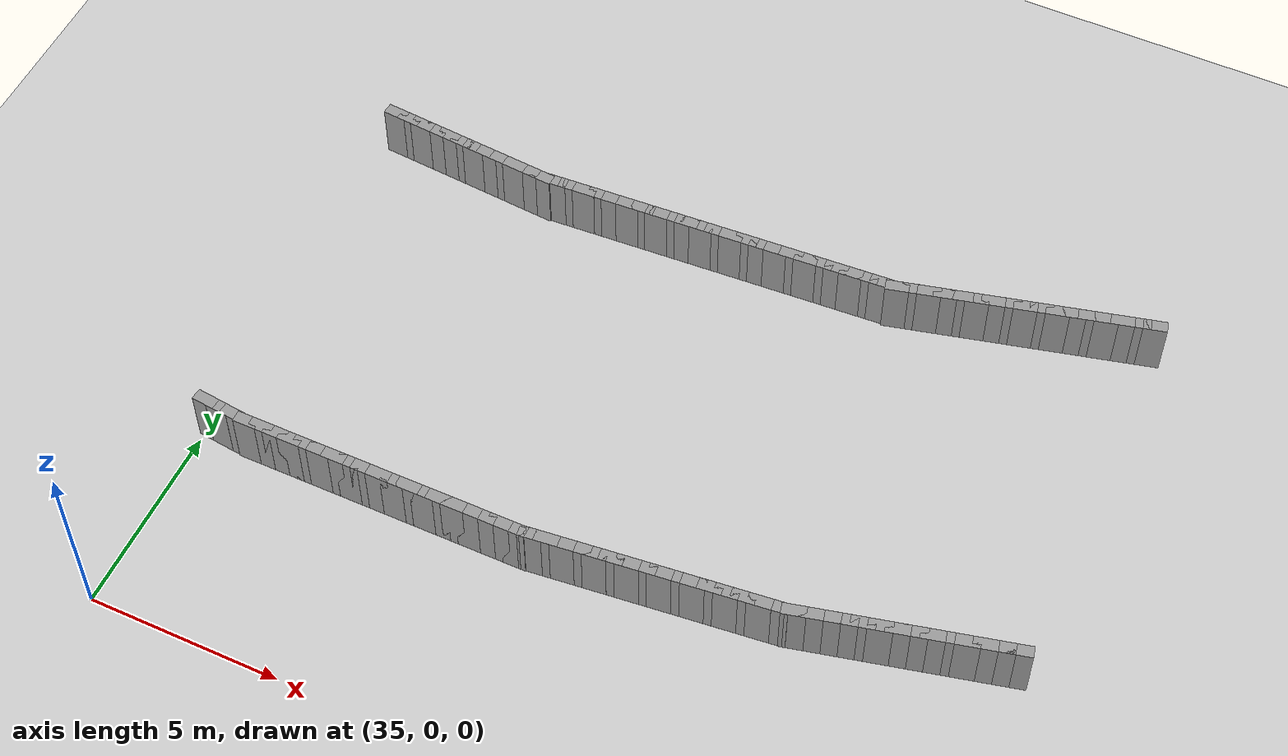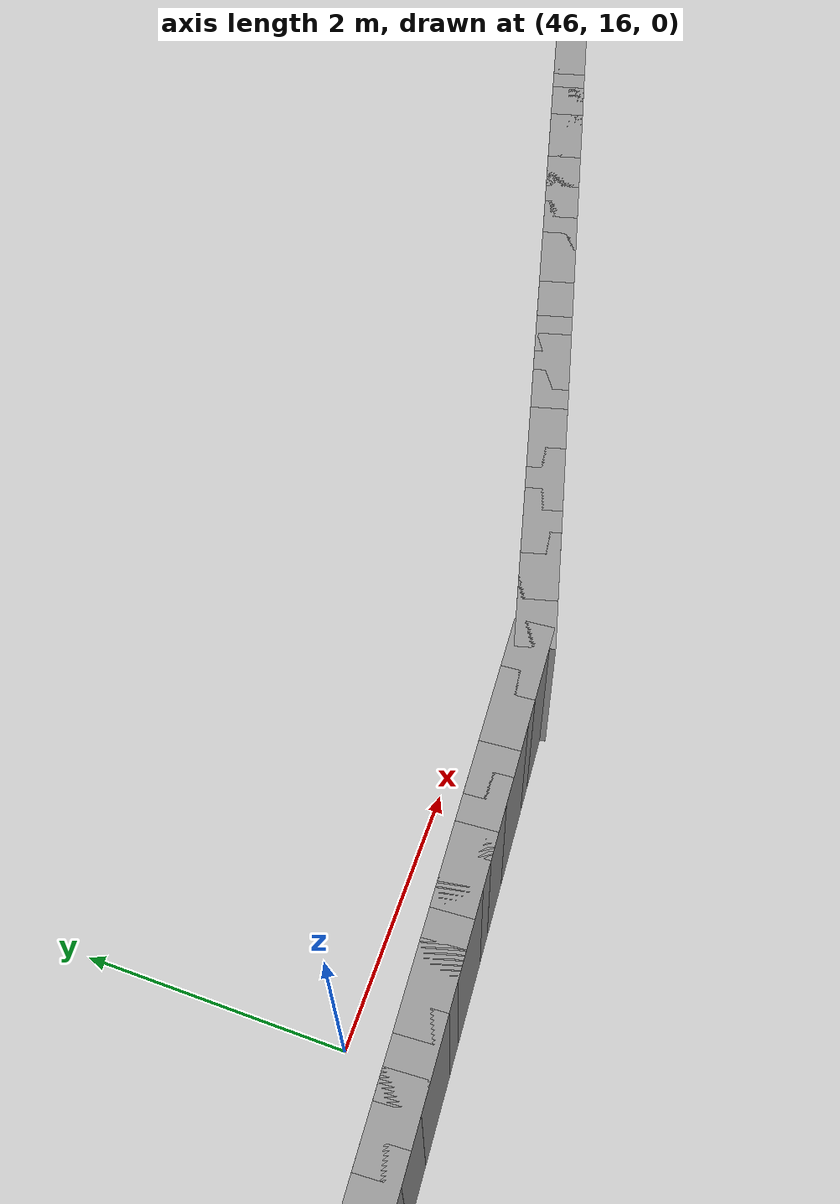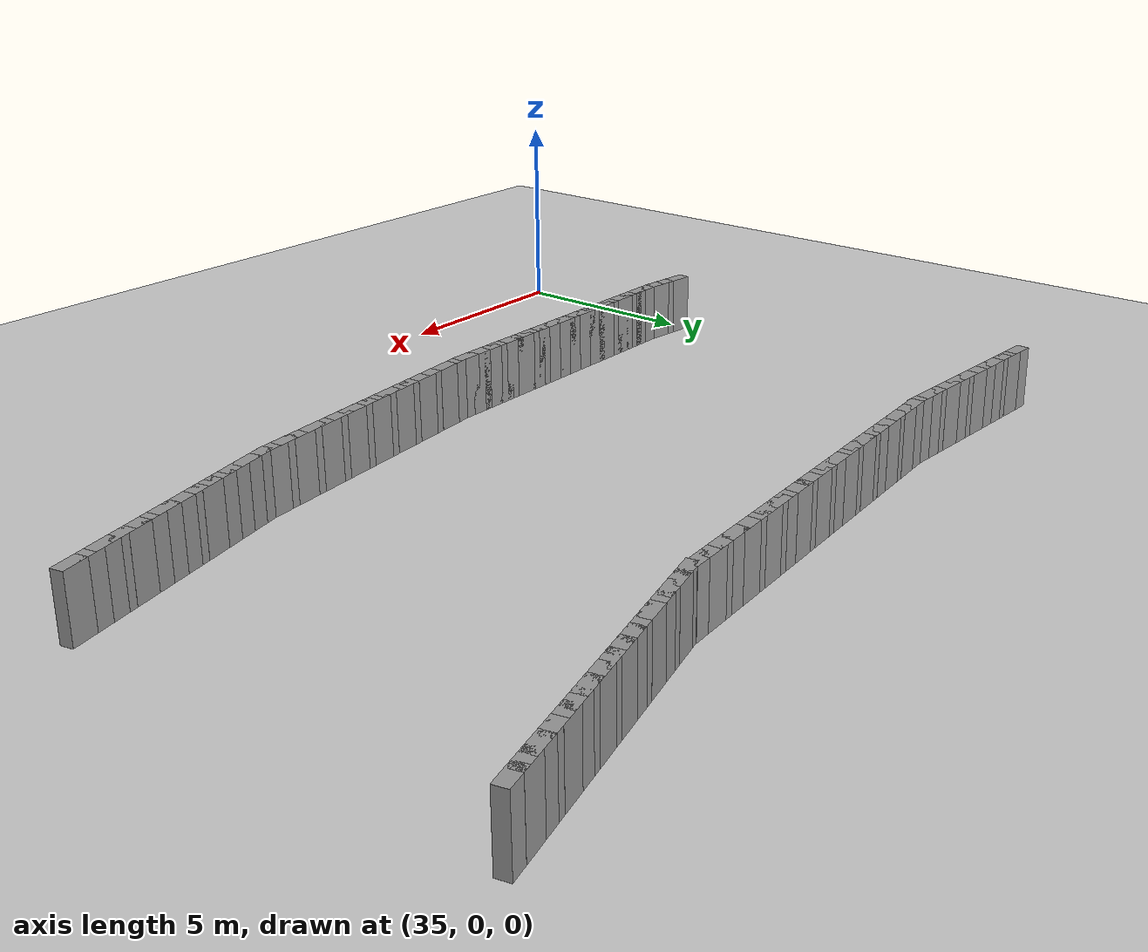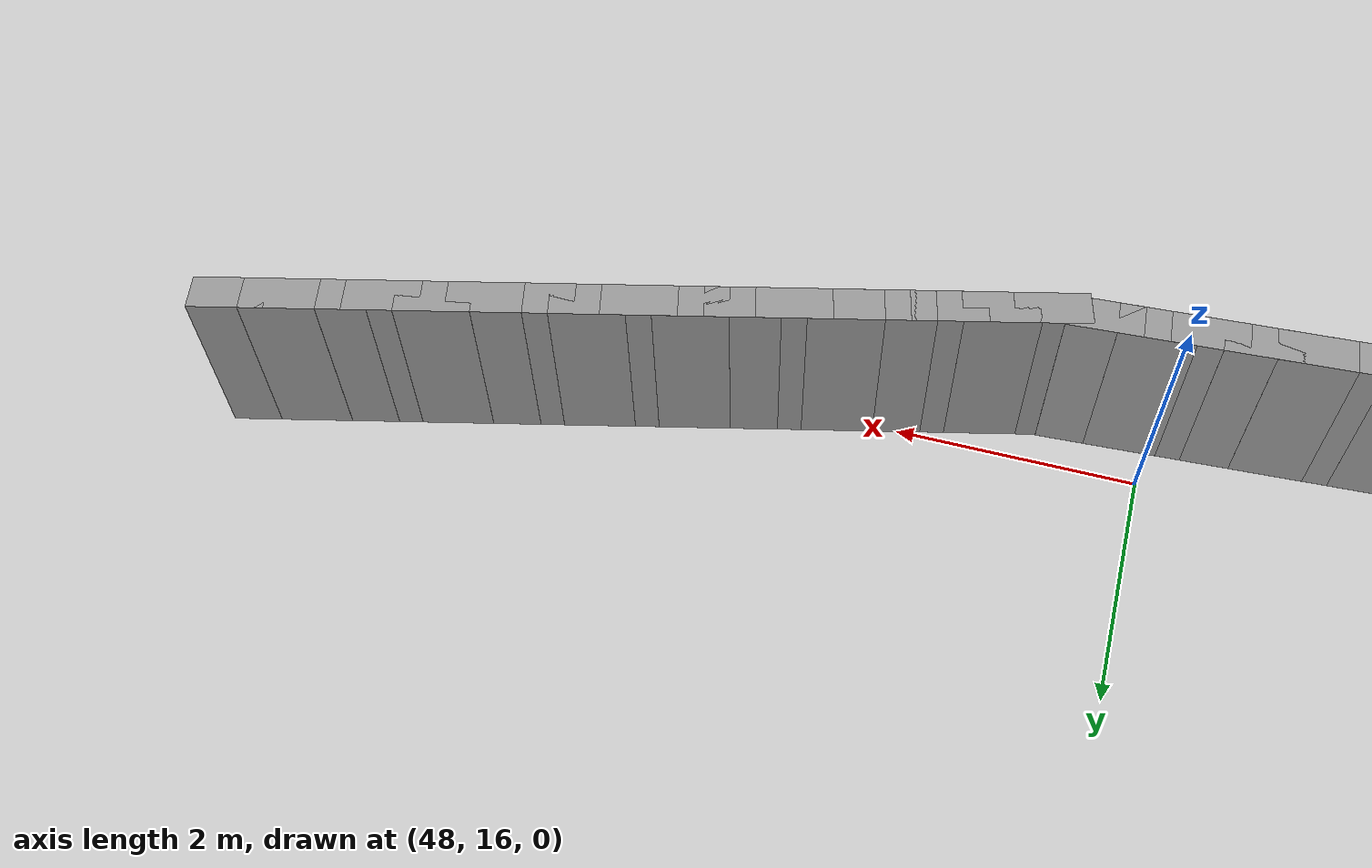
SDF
<sdf version="1.5">
 <world name="ellipse_loop">
  <include><uri>model://sun</uri></include>
  <include><uri>model://ground_plane</uri></include>
  <model name="curbL_104">
   <static>true</static>
   <pose>35.187 5.311 0.750 0 0 -0.109</pose>
   <link name="link">
    <collision name="col"><geometry><box><size>0.600 0.300 1.500</size></box></geometry></collision>
    <visual name="vis">
     <geometry><box><size>0.600 0.300 1.500</size></box></geometry>
     <material><ambient>0.6 0.6 0.6 1</ambient><diffuse>0.6 0.6 0.6 1</diffuse></material>
    </visual>
   </link>
  </model>
  <model name="curbL_105">
   <static>true</static>
   <pose>35.585 5.267 0.750 0 0 -0.109</pose>
   <link name="link">
    <collision name="col"><geometry><box><size>0.600 0.300 1.500</size></box></geometry></collision>
    <visual name="vis">
     <geometry><box><size>0.600 0.300 1.500</size></box></geometry>
     <material><ambient>0.6 0.6 0.6 1</ambient><diffuse>0.6 0.6 0.6 1</diffuse></material>
    </visual>
   </link>
  </model>
  <model name="curbL_106">
   <static>true</static>
   <pose>35.983 5.224 0.750 0 0 -0.109</pose>
   <link name="link">
    <collision name="col"><geometry><box><size>0.600 0.300 1.500</size></box></geometry></collision>
    <visual name="vis">
     <geometry><box><size>0.600 0.300 1.500</size></box></geometry>
     <material><ambient>0.6 0.6 0.6 1</ambient><diffuse>0.6 0.6 0.6 1</diffuse></material>
    </visual>
   </link>
  </model>
  <model name="curbL_107">
   <static>true</static>
   <pose>36.381 5.191 0.750 0 0 0.000</pose>
   <link name="link">
    <collision name="col"><geometry><box><size>0.600 0.300 1.500</size></box></geometry></collision>
    <visual name="vis">
     <geometry><box><size>0.600 0.300 1.500</size></box></geometry>
     <material><ambient>0.6 0.6 0.6 1</ambient><diffuse>0.6 0.6 0.6 1</diffuse></material>
    </visual>
   </link>
  </model>
  <model name="curbL_108">
   <static>true</static>
   <pose>36.781 5.191 0.750 0 0 0.000</pose>
   <link name="link">
    <collision name="col"><geometry><box><size>0.600 0.300 1.500</size></box></geometry></collision>
    <visual name="vis">
     <geometry><box><size>0.600 0.300 1.500</size></box></geometry>
     <material><ambient>0.6 0.6 0.6 1</ambient><diffuse>0.6 0.6 0.6 1</diffuse></material>
    </visual>
   </link>
  </model>
  <model name="curbL_109">
   <static>true</static>
   <pose>37.181 5.191 0.750 0 0 0.000</pose>
   <link name="link">
    <collision name="col"><geometry><box><size>0.600 0.300 1.500</size></box></geometry></collision>
    <visual name="vis">
     <geometry><box><size>0.600 0.300 1.500</size></box></geometry>
     <material><ambient>0.6 0.6 0.6 1</ambient><diffuse>0.6 0.6 0.6 1</diffuse></material>
    </visual>
   </link>
  </model>
  <model name="curbL_110">
   <static>true</static>
   <pose>37.581 5.191 0.750 0 0 0.000</pose>
   <link name="link">
    <collision name="col"><geometry><box><size>0.600 0.300 1.500</size></box></geometry></collision>
    <visual name="vis">
     <geometry><box><size>0.600 0.300 1.500</size></box></geometry>
     <material><ambient>0.6 0.6 0.6 1</ambient><diffuse>0.6 0.6 0.6 1</diffuse></material>
    </visual>
   </link>
  </model>
  <model name="curbL_111">
   <static>true</static>
   <pose>37.981 5.191 0.750 0 0 0.000</pose>
   <link name="link">
    <collision name="col"><geometry><box><size>0.600 0.300 1.500</size></box></geometry></collision>
    <visual name="vis">
     <geometry><box><size>0.600 0.300 1.500</size></box></geometry>
     <material><ambient>0.6 0.6 0.6 1</ambient><diffuse>0.6 0.6 0.6 1</diffuse></material>
    </visual>
   </link>
  </model>
  <model name="curbL_112">
   <static>true</static>
   <pose>38.381 5.191 0.750 0 0 0.000</pose>
   <link name="link">
    <collision name="col"><geometry><box><size>0.600 0.300 1.500</size></box></geometry></collision>
    <visual name="vis">
     <geometry><box><size>0.600 0.300 1.500</size></box></geometry>
     <material><ambient>0.6 0.6 0.6 1</ambient><diffuse>0.6 0.6 0.6 1</diffuse></material>
    </visual>
   </link>
  </model>
  <model name="curbL_113">
   <static>true</static>
   <pose>38.781 5.191 0.750 0 0 0.000</pose>
   <link name="link">
    <collision name="col"><geometry><box><size>0.600 0.300 1.500</size></box></geometry></collision>
    <visual name="vis">
     <geometry><box><size>0.600 0.300 1.500</size></box></geometry>
     <material><ambient>0.6 0.6 0.6 1</ambient><diffuse>0.6 0.6 0.6 1</diffuse></material>
    </visual>
   </link>
  </model>
  <model name="curbL_114">
   <static>true</static>
   <pose>39.181 5.191 0.750 0 0 0.000</pose>
   <link name="link">
    <collision name="col"><geometry><box><size>0.600 0.300 1.500</size></box></geometry></collision>
    <visual name="vis">
     <geometry><box><size>0.600 0.300 1.500</size></box></geometry>
     <material><ambient>0.6 0.6 0.6 1</ambient><diffuse>0.6 0.6 0.6 1</diffuse></material>
    </visual>
   </link>
  </model>
  <model name="curbL_115">
   <static>true</static>
   <pose>39.581 5.191 0.750 0 0 0.000</pose>
   <link name="link">
    <collision name="col"><geometry><box><size>0.600 0.300 1.500</size></box></geometry></collision>
    <visual name="vis">
     <geometry><box><size>0.600 0.300 1.500</size></box></geometry>
     <material><ambient>0.6 0.6 0.6 1</ambient><diffuse>0.6 0.6 0.6 1</diffuse></material>
    </visual>
   </link>
  </model>
  <model name="curbL_116">
   <static>true</static>
   <pose>39.981 5.191 0.750 0 0 0.000</pose>
   <link name="link">
    <collision name="col"><geometry><box><size>0.600 0.300 1.500</size></box></geometry></collision>
    <visual name="vis">
     <geometry><box><size>0.600 0.300 1.500</size></box></geometry>
     <material><ambient>0.6 0.6 0.6 1</ambient><diffuse>0.6 0.6 0.6 1</diffuse></material>
    </visual>
   </link>
  </model>
  <model name="curbL_117">
   <static>true</static>
   <pose>40.381 5.191 0.750 0 0 0.000</pose>
   <link name="link">
    <collision name="col"><geometry><box><size>0.600 0.300 1.500</size></box></geometry></collision>
    <visual name="vis">
     <geometry><box><size>0.600 0.300 1.500</size></box></geometry>
     <material><ambient>0.6 0.6 0.6 1</ambient><diffuse>0.6 0.6 0.6 1</diffuse></material>
    </visual>
   </link>
  </model>
  <model name="curbL_118">
   <static>true</static>
   <pose>40.781 5.191 0.750 0 0 0.000</pose>
   <link name="link">
    <collision name="col"><geometry><box><size>0.600 0.300 1.500</size></box></geometry></collision>
    <visual name="vis">
     <geometry><box><size>0.600 0.300 1.500</size></box></geometry>
     <material><ambient>0.6 0.6 0.6 1</ambient><diffuse>0.6 0.6 0.6 1</diffuse></material>
    </visual>
   </link>
  </model>
  <model name="curbL_119">
   <static>true</static>
   <pose>41.181 5.191 0.750 0 0 0.000</pose>
   <link name="link">
    <collision name="col"><geometry><box><size>0.600 0.300 1.500</size></box></geometry></collision>
    <visual name="vis">
     <geometry><box><size>0.600 0.300 1.500</size></box></geometry>
     <material><ambient>0.6 0.6 0.6 1</ambient><diffuse>0.6 0.6 0.6 1</diffuse></material>
    </visual>
   </link>
  </model>
  <model name="curbL_120">
   <static>true</static>
   <pose>41.581 5.191 0.750 0 0 0.000</pose>
   <link name="link">
    <collision name="col"><geometry><box><size>0.600 0.300 1.500</size></box></geometry></collision>
    <visual name="vis">
     <geometry><box><size>0.600 0.300 1.500</size></box></geometry>
     <material><ambient>0.6 0.6 0.6 1</ambient><diffuse>0.6 0.6 0.6 1</diffuse></material>
    </visual>
   </link>
  </model>
  <model name="curbL_121">
   <static>true</static>
   <pose>41.981 5.191 0.750 0 0 0.000</pose>
   <link name="link">
    <collision name="col"><geometry><box><size>0.600 0.300 1.500</size></box></geometry></collision>
    <visual name="vis">
     <geometry><box><size>0.600 0.300 1.500</size></box></geometry>
     <material><ambient>0.6 0.6 0.6 1</ambient><diffuse>0.6 0.6 0.6 1</diffuse></material>
    </visual>
   </link>
  </model>
  <model name="curbL_122">
   <static>true</static>
   <pose>42.381 5.191 0.750 0 0 0.000</pose>
   <link name="link">
    <collision name="col"><geometry><box><size>0.600 0.300 1.500</size></box></geometry></collision>
    <visual name="vis">
     <geometry><box><size>0.600 0.300 1.500</size></box></geometry>
     <material><ambient>0.6 0.6 0.6 1</ambient><diffuse>0.6 0.6 0.6 1</diffuse></material>
    </visual>
   </link>
  </model>
  <model name="curbL_123">
   <static>true</static>
   <pose>42.781 5.191 0.750 0 0 0.000</pose>
   <link name="link">
    <collision name="col"><geometry><box><size>0.600 0.300 1.500</size></box></geometry></collision>
    <visual name="vis">
     <geometry><box><size>0.600 0.300 1.500</size></box></geometry>
     <material><ambient>0.6 0.6 0.6 1</ambient><diffuse>0.6 0.6 0.6 1</diffuse></material>
    </visual>
   </link>
  </model>
  <model name="curbL_124">
   <static>true</static>
   <pose>43.181 5.191 0.750 0 0 0.000</pose>
   <link name="link">
    <collision name="col"><geometry><box><size>0.600 0.300 1.500</size></box></geometry></collision>
    <visual name="vis">
     <geometry><box><size>0.600 0.300 1.500</size></box></geometry>
     <material><ambient>0.6 0.6 0.6 1</ambient><diffuse>0.6 0.6 0.6 1</diffuse></material>
    </visual>
   </link>
  </model>
  <model name="curbL_125">
   <static>true</static>
   <pose>43.581 5.191 0.750 0 0 0.000</pose>
   <link name="link">
    <collision name="col"><geometry><box><size>0.600 0.300 1.500</size></box></geometry></collision>
    <visual name="vis">
     <geometry><box><size>0.600 0.300 1.500</size></box></geometry>
     <material><ambient>0.6 0.6 0.6 1</ambient><diffuse>0.6 0.6 0.6 1</diffuse></material>
    </visual>
   </link>
  </model>
  <model name="curbL_126">
   <static>true</static>
   <pose>43.980 5.216 0.750 0 0 0.106</pose>
   <link name="link">
    <collision name="col"><geometry><box><size>0.600 0.300 1.500</size></box></geometry></collision>
    <visual name="vis">
     <geometry><box><size>0.600 0.300 1.500</size></box></geometry>
     <material><ambient>0.6 0.6 0.6 1</ambient><diffuse>0.6 0.6 0.6 1</diffuse></material>
    </visual>
   </link>
  </model>
  <model name="curbL_127">
   <static>true</static>
   <pose>44.377 5.259 0.750 0 0 0.106</pose>
   <link name="link">
    <collision name="col"><geometry><box><size>0.600 0.300 1.500</size></box></geometry></collision>
    <visual name="vis">
     <geometry><box><size>0.600 0.300 1.500</size></box></geometry>
     <material><ambient>0.6 0.6 0.6 1</ambient><diffuse>0.6 0.6 0.6 1</diffuse></material>
    </visual>
   </link>
  </model>
  <model name="curbL_128">
   <static>true</static>
   <pose>44.775 5.301 0.750 0 0 0.106</pose>
   <link name="link">
    <collision name="col"><geometry><box><size>0.600 0.300 1.500</size></box></geometry></collision>
    <visual name="vis">
     <geometry><box><size>0.600 0.300 1.500</size></box></geometry>
     <material><ambient>0.6 0.6 0.6 1</ambient><diffuse>0.6 0.6 0.6 1</diffuse></material>
    </visual>
   </link>
  </model>
  <model name="curbL_129">
   <static>true</static>
   <pose>45.173 5.344 0.750 0 0 0.106</pose>
   <link name="link">
    <collision name="col"><geometry><box><size>0.600 0.300 1.500</size></box></geometry></collision>
    <visual name="vis">
     <geometry><box><size>0.600 0.300 1.500</size></box></geometry>
     <material><ambient>0.6 0.6 0.6 1</ambient><diffuse>0.6 0.6 0.6 1</diffuse></material>
    </visual>
   </link>
  </model>
  <model name="curbL_130">
   <static>true</static>
   <pose>45.570 5.386 0.750 0 0 0.106</pose>
   <link name="link">
    <collision name="col"><geometry><box><size>0.600 0.300 1.500</size></box></geometry></collision>
    <visual name="vis">
     <geometry><box><size>0.600 0.300 1.500</size></box></geometry>
     <material><ambient>0.6 0.6 0.6 1</ambient><diffuse>0.6 0.6 0.6 1</diffuse></material>
    </visual>
   </link>
  </model>
  <model name="curbL_131">
   <static>true</static>
   <pose>45.968 5.429 0.750 0 0 0.106</pose>
   <link name="link">
    <collision name="col"><geometry><box><size>0.600 0.300 1.500</size></box></geometry></collision>
    <visual name="vis">
     <geometry><box><size>0.600 0.300 1.500</size></box></geometry>
     <material><ambient>0.6 0.6 0.6 1</ambient><diffuse>0.6 0.6 0.6 1</diffuse></material>
    </visual>
   </link>
  </model>
  <model name="curbL_132">
   <static>true</static>
   <pose>46.366 5.471 0.750 0 0 0.106</pose>
   <link name="link">
    <collision name="col"><geometry><box><size>0.600 0.300 1.500</size></box></geometry></collision>
    <visual name="vis">
     <geometry><box><size>0.600 0.300 1.500</size></box></geometry>
     <material><ambient>0.6 0.6 0.6 1</ambient><diffuse>0.6 0.6 0.6 1</diffuse></material>
    </visual>
   </link>
  </model>
  <model name="curbL_133">
   <static>true</static>
   <pose>46.764 5.514 0.750 0 0 0.106</pose>
   <link name="link">
    <collision name="col"><geometry><box><size>0.600 0.300 1.500</size></box></geometry></collision>
    <visual name="vis">
     <geometry><box><size>0.600 0.300 1.500</size></box></geometry>
     <material><ambient>0.6 0.6 0.6 1</ambient><diffuse>0.6 0.6 0.6 1</diffuse></material>
    </visual>
   </link>
  </model>
  <model name="curbL_134">
   <static>true</static>
   <pose>47.161 5.556 0.750 0 0 0.106</pose>
   <link name="link">
    <collision name="col"><geometry><box><size>0.600 0.300 1.500</size></box></geometry></collision>
    <visual name="vis">
     <geometry><box><size>0.600 0.300 1.500</size></box></geometry>
     <material><ambient>0.6 0.6 0.6 1</ambient><diffuse>0.6 0.6 0.6 1</diffuse></material>
    </visual>
   </link>
  </model>
  <model name="curbL_135">
   <static>true</static>
   <pose>47.559 5.599 0.750 0 0 0.106</pose>
   <link name="link">
    <collision name="col"><geometry><box><size>0.600 0.300 1.500</size></box></geometry></collision>
    <visual name="vis">
     <geometry><box><size>0.600 0.300 1.500</size></box></geometry>
     <material><ambient>0.6 0.6 0.6 1</ambient><diffuse>0.6 0.6 0.6 1</diffuse></material>
    </visual>
   </link>
  </model>
  <model name="curbL_136">
   <static>true</static>
   <pose>47.957 5.641 0.750 0 0 0.106</pose>
   <link name="link">
    <collision name="col"><geometry><box><size>0.600 0.300 1.500</size></box></geometry></collision>
    <visual name="vis">
     <geometry><box><size>0.600 0.300 1.500</size></box></geometry>
     <material><ambient>0.6 0.6 0.6 1</ambient><diffuse>0.6 0.6 0.6 1</diffuse></material>
    </visual>
   </link>
  </model>
  <model name="curbL_137">
   <static>true</static>
   <pose>48.355 5.684 0.750 0 0 0.106</pose>
   <link name="link">
    <collision name="col"><geometry><box><size>0.600 0.300 1.500</size></box></geometry></collision>
    <visual name="vis">
     <geometry><box><size>0.600 0.300 1.500</size></box></geometry>
     <material><ambient>0.6 0.6 0.6 1</ambient><diffuse>0.6 0.6 0.6 1</diffuse></material>
    </visual>
   </link>
  </model>
  <model name="curbL_138">
   <static>true</static>
   <pose>48.752 5.726 0.750 0 0 0.106</pose>
   <link name="link">
    <collision name="col"><geometry><box><size>0.600 0.300 1.500</size></box></geometry></collision>
    <visual name="vis">
     <geometry><box><size>0.600 0.300 1.500</size></box></geometry>
     <material><ambient>0.6 0.6 0.6 1</ambient><diffuse>0.6 0.6 0.6 1</diffuse></material>
    </visual>
   </link>
  </model>
  <model name="curbL_139">
   <static>true</static>
   <pose>49.150 5.769 0.750 0 0 0.106</pose>
   <link name="link">
    <collision name="col"><geometry><box><size>0.600 0.300 1.500</size></box></geometry></collision>
    <visual name="vis">
     <geometry><box><size>0.600 0.300 1.500</size></box></geometry>
     <material><ambient>0.6 0.6 0.6 1</ambient><diffuse>0.6 0.6 0.6 1</diffuse></material>
    </visual>
   </link>
  </model>
  <model name="curbL_140">
   <static>true</static>
   <pose>49.548 5.811 0.750 0 0 0.106</pose>
   <link name="link">
    <collision name="col"><geometry><box><size>0.600 0.300 1.500</size></box></geometry></collision>
    <visual name="vis">
     <geometry><box><size>0.600 0.300 1.500</size></box></geometry>
     <material><ambient>0.6 0.6 0.6 1</ambient><diffuse>0.6 0.6 0.6 1</diffuse></material>
    </visual>
   </link>
  </model>
  <model name="curbL_141">
   <static>true</static>
   <pose>49.946 5.854 0.750 0 0 0.106</pose>
   <link name="link">
    <collision name="col"><geometry><box><size>0.600 0.300 1.500</size></box></geometry></collision>
    <visual name="vis">
     <geometry><box><size>0.600 0.300 1.500</size></box></geometry>
     <material><ambient>0.6 0.6 0.6 1</ambient><diffuse>0.6 0.6 0.6 1</diffuse></material>
    </visual>
   </link>
  </model>
  <model name="curbL_142">
   <static>true</static>
   <pose>50.339 5.921 0.750 0 0 0.237</pose>
   <link name="link">
    <collision name="col"><geometry><box><size>0.600 0.300 1.500</size></box></geometry></collision>
    <visual name="vis">
     <geometry><box><size>0.600 0.300 1.500</size></box></geometry>
     <material><ambient>0.6 0.6 0.6 1</ambient><diffuse>0.6 0.6 0.6 1</diffuse></material>
    </visual>
   </link>
  </model>
  <model name="curbL_143">
   <static>true</static>
   <pose>50.728 6.015 0.750 0 0 0.237</pose>
   <link name="link">
    <collision name="col"><geometry><box><size>0.600 0.300 1.500</size></box></geometry></collision>
    <visual name="vis">
     <geometry><box><size>0.600 0.300 1.500</size></box></geometry>
     <material><ambient>0.6 0.6 0.6 1</ambient><diffuse>0.6 0.6 0.6 1</diffuse></material>
    </visual>
   </link>
  </model>
  <model name="curbL_144">
   <static>true</static>
   <pose>51.117 6.109 0.750 0 0 0.237</pose>
   <link name="link">
    <collision name="col"><geometry><box><size>0.600 0.300 1.500</size></box></geometry></collision>
    <visual name="vis">
     <geometry><box><size>0.600 0.300 1.500</size></box></geometry>
     <material><ambient>0.6 0.6 0.6 1</ambient><diffuse>0.6 0.6 0.6 1</diffuse></material>
    </visual>
   </link>
  </model>
  <model name="curbL_145">
   <static>true</static>
   <pose>51.505 6.203 0.750 0 0 0.237</pose>
   <link name="link">
    <collision name="col"><geometry><box><size>0.600 0.300 1.500</size></box></geometry></collision>
    <visual name="vis">
     <geometry><box><size>0.600 0.300 1.500</size></box></geometry>
     <material><ambient>0.6 0.6 0.6 1</ambient><diffuse>0.6 0.6 0.6 1</diffuse></material>
    </visual>
   </link>
  </model>
  <model name="curbL_146">
   <static>true</static>
   <pose>51.894 6.297 0.750 0 0 0.237</pose>
   <link name="link">
    <collision name="col"><geometry><box><size>0.600 0.300 1.500</size></box></geometry></collision>
    <visual name="vis">
     <geometry><box><size>0.600 0.300 1.500</size></box></geometry>
     <material><ambient>0.6 0.6 0.6 1</ambient><diffuse>0.6 0.6 0.6 1</diffuse></material>
    </visual>
   </link>
  </model>
  <model name="curbL_147">
   <static>true</static>
   <pose>52.283 6.390 0.750 0 0 0.237</pose>
   <link name="link">
    <collision name="col"><geometry><box><size>0.600 0.300 1.500</size></box></geometry></collision>
    <visual name="vis">
     <geometry><box><size>0.600 0.300 1.500</size></box></geometry>
     <material><ambient>0.6 0.6 0.6 1</ambient><diffuse>0.6 0.6 0.6 1</diffuse></material>
    </visual>
   </link>
  </model>
  <model name="curbL_148">
   <static>true</static>
   <pose>52.672 6.484 0.750 0 0 0.237</pose>
   <link name="link">
    <collision name="col"><geometry><box><size>0.600 0.300 1.500</size></box></geometry></collision>
    <visual name="vis">
     <geometry><box><size>0.600 0.300 1.500</size></box></geometry>
     <material><ambient>0.6 0.6 0.6 1</ambient><diffuse>0.6 0.6 0.6 1</diffuse></material>
    </visual>
   </link>
  </model>
  <model name="curbL_149">
   <static>true</static>
   <pose>53.061 6.578 0.750 0 0 0.237</pose>
   <link name="link">
    <collision name="col"><geometry><box><size>0.600 0.300 1.500</size></box></geometry></collision>
    <visual name="vis">
     <geometry><box><size>0.600 0.300 1.500</size></box></geometry>
     <material><ambient>0.6 0.6 0.6 1</ambient><diffuse>0.6 0.6 0.6 1</diffuse></material>
    </visual>
   </link>
  </model>
  <model name="curbL_150">
   <static>true</static>
   <pose>53.450 6.672 0.750 0 0 0.237</pose>
   <link name="link">
    <collision name="col"><geometry><box><size>0.600 0.300 1.500</size></box></geometry></collision>
    <visual name="vis">
     <geometry><box><size>0.600 0.300 1.500</size></box></geometry>
     <material><ambient>0.6 0.6 0.6 1</ambient><diffuse>0.6 0.6 0.6 1</diffuse></material>
    </visual>
   </link>
  </model>
  <model name="curbL_151">
   <static>true</static>
   <pose>53.839 6.766 0.750 0 0 0.237</pose>
   <link name="link">
    <collision name="col"><geometry><box><size>0.600 0.300 1.500</size></box></geometry></collision>
    <visual name="vis">
     <geometry><box><size>0.600 0.300 1.500</size></box></geometry>
     <material><ambient>0.6 0.6 0.6 1</ambient><diffuse>0.6 0.6 0.6 1</diffuse></material>
    </visual>
   </link>
  </model>
  <model name="curbL_152">
   <static>true</static>
   <pose>54.227 6.859 0.750 0 0 0.237</pose>
   <link name="link">
    <collision name="col"><geometry><box><size>0.600 0.300 1.500</size></box></geometry></collision>
    <visual name="vis">
     <geometry><box><size>0.600 0.300 1.500</size></box></geometry>
     <material><ambient>0.6 0.6 0.6 1</ambient><diffuse>0.6 0.6 0.6 1</diffuse></material>
    </visual>
   </link>
  </model>
  <model name="curbL_153">
   <static>true</static>
   <pose>54.616 6.953 0.750 0 0 0.237</pose>
   <link name="link">
    <collision name="col"><geometry><box><size>0.600 0.300 1.500</size></box></geometry></collision>
    <visual name="vis">
     <geometry><box><size>0.600 0.300 1.500</size></box></geometry>
     <material><ambient>0.6 0.6 0.6 1</ambient><diffuse>0.6 0.6 0.6 1</diffuse></material>
    </visual>
   </link>
  </model>
  <model name="curbL_154">
   <static>true</static>
   <pose>55.005 7.047 0.750 0 0 0.237</pose>
   <link name="link">
    <collision name="col"><geometry><box><size>0.600 0.300 1.500</size></box></geometry></collision>
    <visual name="vis">
     <geometry><box><size>0.600 0.300 1.500</size></box></geometry>
     <material><ambient>0.6 0.6 0.6 1</ambient><diffuse>0.6 0.6 0.6 1</diffuse></material>
    </visual>
   </link>
  </model>
  <model name="curbL_155">
   <static>true</static>
   <pose>55.394 7.141 0.750 0 0 0.237</pose>
   <link name="link">
    <collision name="col"><geometry><box><size>0.600 0.300 1.500</size></box></geometry></collision>
    <visual name="vis">
     <geometry><box><size>0.600 0.300 1.500</size></box></geometry>
     <material><ambient>0.6 0.6 0.6 1</ambient><diffuse>0.6 0.6 0.6 1</diffuse></material>
    </visual>
   </link>
  </model>
  <model name="curbR_177">
   <static>true</static>
   <pose>55.185 17.148 0.750 0 0 -2.895</pose>
   <link name="link">
    <collision name="col"><geometry><box><size>0.600 0.300 1.500</size></box></geometry></collision>
    <visual name="vis">
     <geometry><box><size>0.600 0.300 1.500</size></box></geometry>
     <material><ambient>0.6 0.6 0.6 1</ambient><diffuse>0.6 0.6 0.6 1</diffuse></material>
    </visual>
   </link>
  </model>
  <model name="curbR_178">
   <static>true</static>
   <pose>54.797 17.051 0.750 0 0 -2.895</pose>
   <link name="link">
    <collision name="col"><geometry><box><size>0.600 0.300 1.500</size></box></geometry></collision>
    <visual name="vis">
     <geometry><box><size>0.600 0.300 1.500</size></box></geometry>
     <material><ambient>0.6 0.6 0.6 1</ambient><diffuse>0.6 0.6 0.6 1</diffuse></material>
    </visual>
   </link>
  </model>
  <model name="curbR_179">
   <static>true</static>
   <pose>54.410 16.953 0.750 0 0 -2.895</pose>
   <link name="link">
    <collision name="col"><geometry><box><size>0.600 0.300 1.500</size></box></geometry></collision>
    <visual name="vis">
     <geometry><box><size>0.600 0.300 1.500</size></box></geometry>
     <material><ambient>0.6 0.6 0.6 1</ambient><diffuse>0.6 0.6 0.6 1</diffuse></material>
    </visual>
   </link>
  </model>
  <model name="curbR_180">
   <static>true</static>
   <pose>54.022 16.855 0.750 0 0 -2.895</pose>
   <link name="link">
    <collision name="col"><geometry><box><size>0.600 0.300 1.500</size></box></geometry></collision>
    <visual name="vis">
     <geometry><box><size>0.600 0.300 1.500</size></box></geometry>
     <material><ambient>0.6 0.6 0.6 1</ambient><diffuse>0.6 0.6 0.6 1</diffuse></material>
    </visual>
   </link>
  </model>
  <model name="curbR_181">
   <static>true</static>
   <pose>53.634 16.758 0.750 0 0 -2.895</pose>
   <link name="link">
    <collision name="col"><geometry><box><size>0.600 0.300 1.500</size></box></geometry></collision>
    <visual name="vis">
     <geometry><box><size>0.600 0.300 1.500</size></box></geometry>
     <material><ambient>0.6 0.6 0.6 1</ambient><diffuse>0.6 0.6 0.6 1</diffuse></material>
    </visual>
   </link>
  </model>
  <model name="curbR_182">
   <static>true</static>
   <pose>53.246 16.660 0.750 0 0 -2.895</pose>
   <link name="link">
    <collision name="col"><geometry><box><size>0.600 0.300 1.500</size></box></geometry></collision>
    <visual name="vis">
     <geometry><box><size>0.600 0.300 1.500</size></box></geometry>
     <material><ambient>0.6 0.6 0.6 1</ambient><diffuse>0.6 0.6 0.6 1</diffuse></material>
    </visual>
   </link>
  </model>
  <model name="curbR_183">
   <static>true</static>
   <pose>52.858 16.562 0.750 0 0 -2.895</pose>
   <link name="link">
    <collision name="col"><geometry><box><size>0.600 0.300 1.500</size></box></geometry></collision>
    <visual name="vis">
     <geometry><box><size>0.600 0.300 1.500</size></box></geometry>
     <material><ambient>0.6 0.6 0.6 1</ambient><diffuse>0.6 0.6 0.6 1</diffuse></material>
    </visual>
   </link>
  </model>
  <model name="curbR_184">
   <static>true</static>
   <pose>52.470 16.465 0.750 0 0 -2.895</pose>
   <link name="link">
    <collision name="col"><geometry><box><size>0.600 0.300 1.500</size></box></geometry></collision>
    <visual name="vis">
     <geometry><box><size>0.600 0.300 1.500</size></box></geometry>
     <material><ambient>0.6 0.6 0.6 1</ambient><diffuse>0.6 0.6 0.6 1</diffuse></material>
    </visual>
   </link>
  </model>
  <model name="curbR_185">
   <static>true</static>
   <pose>52.082 16.367 0.750 0 0 -2.895</pose>
   <link name="link">
    <collision name="col"><geometry><box><size>0.600 0.300 1.500</size></box></geometry></collision>
    <visual name="vis">
     <geometry><box><size>0.600 0.300 1.500</size></box></geometry>
     <material><ambient>0.6 0.6 0.6 1</ambient><diffuse>0.6 0.6 0.6 1</diffuse></material>
    </visual>
   </link>
  </model>
  <model name="curbR_186">
   <static>true</static>
   <pose>51.694 16.270 0.750 0 0 -2.895</pose>
   <link name="link">
    <collision name="col"><geometry><box><size>0.600 0.300 1.500</size></box></geometry></collision>
    <visual name="vis">
     <geometry><box><size>0.600 0.300 1.500</size></box></geometry>
     <material><ambient>0.6 0.6 0.6 1</ambient><diffuse>0.6 0.6 0.6 1</diffuse></material>
    </visual>
   </link>
  </model>
  <model name="curbR_187">
   <static>true</static>
   <pose>51.306 16.172 0.750 0 0 -2.895</pose>
   <link name="link">
    <collision name="col"><geometry><box><size>0.600 0.300 1.500</size></box></geometry></collision>
    <visual name="vis">
     <geometry><box><size>0.600 0.300 1.500</size></box></geometry>
     <material><ambient>0.6 0.6 0.6 1</ambient><diffuse>0.6 0.6 0.6 1</diffuse></material>
    </visual>
   </link>
  </model>
  <model name="curbR_188">
   <static>true</static>
   <pose>50.918 16.074 0.750 0 0 -2.895</pose>
   <link name="link">
    <collision name="col"><geometry><box><size>0.600 0.300 1.500</size></box></geometry></collision>
    <visual name="vis">
     <geometry><box><size>0.600 0.300 1.500</size></box></geometry>
     <material><ambient>0.6 0.6 0.6 1</ambient><diffuse>0.6 0.6 0.6 1</diffuse></material>
    </visual>
   </link>
  </model>
  <model name="curbR_189">
   <static>true</static>
   <pose>50.531 15.977 0.750 0 0 -2.895</pose>
   <link name="link">
    <collision name="col"><geometry><box><size>0.600 0.300 1.500</size></box></geometry></collision>
    <visual name="vis">
     <geometry><box><size>0.600 0.300 1.500</size></box></geometry>
     <material><ambient>0.6 0.6 0.6 1</ambient><diffuse>0.6 0.6 0.6 1</diffuse></material>
    </visual>
   </link>
  </model>
  <model name="curbR_190">
   <static>true</static>
   <pose>50.143 15.879 0.750 0 0 -2.895</pose>
   <link name="link">
    <collision name="col"><geometry><box><size>0.600 0.300 1.500</size></box></geometry></collision>
    <visual name="vis">
     <geometry><box><size>0.600 0.300 1.500</size></box></geometry>
     <material><ambient>0.6 0.6 0.6 1</ambient><diffuse>0.6 0.6 0.6 1</diffuse></material>
    </visual>
   </link>
  </model>
  <model name="curbR_191">
   <static>true</static>
   <pose>49.755 15.781 0.750 0 0 -2.895</pose>
   <link name="link">
    <collision name="col"><geometry><box><size>0.600 0.300 1.500</size></box></geometry></collision>
    <visual name="vis">
     <geometry><box><size>0.600 0.300 1.500</size></box></geometry>
     <material><ambient>0.6 0.6 0.6 1</ambient><diffuse>0.6 0.6 0.6 1</diffuse></material>
    </visual>
   </link>
  </model>
  <model name="curbR_192">
   <static>true</static>
   <pose>49.367 15.684 0.750 0 0 -2.895</pose>
   <link name="link">
    <collision name="col"><geometry><box><size>0.600 0.300 1.500</size></box></geometry></collision>
    <visual name="vis">
     <geometry><box><size>0.600 0.300 1.500</size></box></geometry>
     <material><ambient>0.6 0.6 0.6 1</ambient><diffuse>0.6 0.6 0.6 1</diffuse></material>
    </visual>
   </link>
  </model>
  <model name="curbR_193">
   <static>true</static>
   <pose>48.979 15.586 0.750 0 0 -2.895</pose>
   <link name="link">
    <collision name="col"><geometry><box><size>0.600 0.300 1.500</size></box></geometry></collision>
    <visual name="vis">
     <geometry><box><size>0.600 0.300 1.500</size></box></geometry>
     <material><ambient>0.6 0.6 0.6 1</ambient><diffuse>0.6 0.6 0.6 1</diffuse></material>
    </visual>
   </link>
  </model>
  <model name="curbR_194">
   <static>true</static>
   <pose>48.581 15.554 0.750 0 0 -3.083</pose>
   <link name="link">
    <collision name="col"><geometry><box><size>0.600 0.300 1.500</size></box></geometry></collision>
    <visual name="vis">
     <geometry><box><size>0.600 0.300 1.500</size></box></geometry>
     <material><ambient>0.6 0.6 0.6 1</ambient><diffuse>0.6 0.6 0.6 1</diffuse></material>
    </visual>
   </link>
  </model>
  <model name="curbR_195">
   <static>true</static>
   <pose>48.182 15.531 0.750 0 0 -3.083</pose>
   <link name="link">
    <collision name="col"><geometry><box><size>0.600 0.300 1.500</size></box></geometry></collision>
    <visual name="vis">
     <geometry><box><size>0.600 0.300 1.500</size></box></geometry>
     <material><ambient>0.6 0.6 0.6 1</ambient><diffuse>0.6 0.6 0.6 1</diffuse></material>
    </visual>
   </link>
  </model>
  <model name="curbR_196">
   <static>true</static>
   <pose>47.782 15.507 0.750 0 0 -3.083</pose>
   <link name="link">
    <collision name="col"><geometry><box><size>0.600 0.300 1.500</size></box></geometry></collision>
    <visual name="vis">
     <geometry><box><size>0.600 0.300 1.500</size></box></geometry>
     <material><ambient>0.6 0.6 0.6 1</ambient><diffuse>0.6 0.6 0.6 1</diffuse></material>
    </visual>
   </link>
  </model>
  <model name="curbR_197">
   <static>true</static>
   <pose>47.383 15.484 0.750 0 0 -3.083</pose>
   <link name="link">
    <collision name="col"><geometry><box><size>0.600 0.300 1.500</size></box></geometry></collision>
    <visual name="vis">
     <geometry><box><size>0.600 0.300 1.500</size></box></geometry>
     <material><ambient>0.6 0.6 0.6 1</ambient><diffuse>0.6 0.6 0.6 1</diffuse></material>
    </visual>
   </link>
  </model>
  <model name="curbR_198">
   <static>true</static>
   <pose>46.984 15.461 0.750 0 0 -3.083</pose>
   <link name="link">
    <collision name="col"><geometry><box><size>0.600 0.300 1.500</size></box></geometry></collision>
    <visual name="vis">
     <geometry><box><size>0.600 0.300 1.500</size></box></geometry>
     <material><ambient>0.6 0.6 0.6 1</ambient><diffuse>0.6 0.6 0.6 1</diffuse></material>
    </visual>
   </link>
  </model>
  <model name="curbR_199">
   <static>true</static>
   <pose>46.584 15.437 0.750 0 0 -3.083</pose>
   <link name="link">
    <collision name="col"><geometry><box><size>0.600 0.300 1.500</size></box></geometry></collision>
    <visual name="vis">
     <geometry><box><size>0.600 0.300 1.500</size></box></geometry>
     <material><ambient>0.6 0.6 0.6 1</ambient><diffuse>0.6 0.6 0.6 1</diffuse></material>
    </visual>
   </link>
  </model>
  <model name="curbR_200">
   <static>true</static>
   <pose>46.185 15.414 0.750 0 0 -3.083</pose>
   <link name="link">
    <collision name="col"><geometry><box><size>0.600 0.300 1.500</size></box></geometry></collision>
    <visual name="vis">
     <geometry><box><size>0.600 0.300 1.500</size></box></geometry>
     <material><ambient>0.6 0.6 0.6 1</ambient><diffuse>0.6 0.6 0.6 1</diffuse></material>
    </visual>
   </link>
  </model>
  <model name="curbR_201">
   <static>true</static>
   <pose>45.786 15.390 0.750 0 0 -3.083</pose>
   <link name="link">
    <collision name="col"><geometry><box><size>0.600 0.300 1.500</size></box></geometry></collision>
    <visual name="vis">
     <geometry><box><size>0.600 0.300 1.500</size></box></geometry>
     <material><ambient>0.6 0.6 0.6 1</ambient><diffuse>0.6 0.6 0.6 1</diffuse></material>
    </visual>
   </link>
  </model>
  <model name="curbR_202">
   <static>true</static>
   <pose>45.386 15.367 0.750 0 0 -3.083</pose>
   <link name="link">
    <collision name="col"><geometry><box><size>0.600 0.300 1.500</size></box></geometry></collision>
    <visual name="vis">
     <geometry><box><size>0.600 0.300 1.500</size></box></geometry>
     <material><ambient>0.6 0.6 0.6 1</ambient><diffuse>0.6 0.6 0.6 1</diffuse></material>
    </visual>
   </link>
  </model>
  <model name="curbR_203">
   <static>true</static>
   <pose>44.987 15.344 0.750 0 0 -3.083</pose>
   <link name="link">
    <collision name="col"><geometry><box><size>0.600 0.300 1.500</size></box></geometry></collision>
    <visual name="vis">
     <geometry><box><size>0.600 0.300 1.500</size></box></geometry>
     <material><ambient>0.6 0.6 0.6 1</ambient><diffuse>0.6 0.6 0.6 1</diffuse></material>
    </visual>
   </link>
  </model>
  <model name="curbR_204">
   <static>true</static>
   <pose>44.588 15.320 0.750 0 0 -3.083</pose>
   <link name="link">
    <collision name="col"><geometry><box><size>0.600 0.300 1.500</size></box></geometry></collision>
    <visual name="vis">
     <geometry><box><size>0.600 0.300 1.500</size></box></geometry>
     <material><ambient>0.6 0.6 0.6 1</ambient><diffuse>0.6 0.6 0.6 1</diffuse></material>
    </visual>
   </link>
  </model>
  <model name="curbR_205">
   <static>true</static>
   <pose>44.188 15.297 0.750 0 0 -3.083</pose>
   <link name="link">
    <collision name="col"><geometry><box><size>0.600 0.300 1.500</size></box></geometry></collision>
    <visual name="vis">
     <geometry><box><size>0.600 0.300 1.500</size></box></geometry>
     <material><ambient>0.6 0.6 0.6 1</ambient><diffuse>0.6 0.6 0.6 1</diffuse></material>
    </visual>
   </link>
  </model>
  <model name="curbR_206">
   <static>true</static>
   <pose>43.789 15.273 0.750 0 0 -3.083</pose>
   <link name="link">
    <collision name="col"><geometry><box><size>0.600 0.300 1.500</size></box></geometry></collision>
    <visual name="vis">
     <geometry><box><size>0.600 0.300 1.500</size></box></geometry>
     <material><ambient>0.6 0.6 0.6 1</ambient><diffuse>0.6 0.6 0.6 1</diffuse></material>
    </visual>
   </link>
  </model>
  <model name="curbR_207">
   <static>true</static>
   <pose>43.390 15.250 0.750 0 0 -3.083</pose>
   <link name="link">
    <collision name="col"><geometry><box><size>0.600 0.300 1.500</size></box></geometry></collision>
    <visual name="vis">
     <geometry><box><size>0.600 0.300 1.500</size></box></geometry>
     <material><ambient>0.6 0.6 0.6 1</ambient><diffuse>0.6 0.6 0.6 1</diffuse></material>
    </visual>
   </link>
  </model>
  <model name="curbR_208">
   <static>true</static>
   <pose>42.991 15.227 0.750 0 0 -3.083</pose>
   <link name="link">
    <collision name="col"><geometry><box><size>0.600 0.300 1.500</size></box></geometry></collision>
    <visual name="vis">
     <geometry><box><size>0.600 0.300 1.500</size></box></geometry>
     <material><ambient>0.6 0.6 0.6 1</ambient><diffuse>0.6 0.6 0.6 1</diffuse></material>
    </visual>
   </link>
  </model>
  <model name="curbR_209">
   <static>true</static>
   <pose>42.591 15.203 0.750 0 0 -3.083</pose>
   <link name="link">
    <collision name="col"><geometry><box><size>0.600 0.300 1.500</size></box></geometry></collision>
    <visual name="vis">
     <geometry><box><size>0.600 0.300 1.500</size></box></geometry>
     <material><ambient>0.6 0.6 0.6 1</ambient><diffuse>0.6 0.6 0.6 1</diffuse></material>
    </visual>
   </link>
  </model>
  <model name="curbR_210">
   <static>true</static>
   <pose>42.192 15.180 0.750 0 0 -3.083</pose>
   <link name="link">
    <collision name="col"><geometry><box><size>0.600 0.300 1.500</size></box></geometry></collision>
    <visual name="vis">
     <geometry><box><size>0.600 0.300 1.500</size></box></geometry>
     <material><ambient>0.6 0.6 0.6 1</ambient><diffuse>0.6 0.6 0.6 1</diffuse></material>
    </visual>
   </link>
  </model>
  <model name="curbR_211">
   <static>true</static>
   <pose>41.793 15.156 0.750 0 0 -3.083</pose>
   <link name="link">
    <collision name="col"><geometry><box><size>0.600 0.300 1.500</size></box></geometry></collision>
    <visual name="vis">
     <geometry><box><size>0.600 0.300 1.500</size></box></geometry>
     <material><ambient>0.6 0.6 0.6 1</ambient><diffuse>0.6 0.6 0.6 1</diffuse></material>
    </visual>
   </link>
  </model>
  <model name="curbR_212">
   <static>true</static>
   <pose>41.393 15.133 0.750 0 0 -3.083</pose>
   <link name="link">
    <collision name="col"><geometry><box><size>0.600 0.300 1.500</size></box></geometry></collision>
    <visual name="vis">
     <geometry><box><size>0.600 0.300 1.500</size></box></geometry>
     <material><ambient>0.6 0.6 0.6 1</ambient><diffuse>0.6 0.6 0.6 1</diffuse></material>
    </visual>
   </link>
  </model>
  <model name="curbR_213">
   <static>true</static>
   <pose>40.994 15.110 0.750 0 0 -3.083</pose>
   <link name="link">
    <collision name="col"><geometry><box><size>0.600 0.300 1.500</size></box></geometry></collision>
    <visual name="vis">
     <geometry><box><size>0.600 0.300 1.500</size></box></geometry>
     <material><ambient>0.6 0.6 0.6 1</ambient><diffuse>0.6 0.6 0.6 1</diffuse></material>
    </visual>
   </link>
  </model>
  <model name="curbR_214">
   <static>true</static>
   <pose>40.595 15.086 0.750 0 0 -3.083</pose>
   <link name="link">
    <collision name="col"><geometry><box><size>0.600 0.300 1.500</size></box></geometry></collision>
    <visual name="vis">
     <geometry><box><size>0.600 0.300 1.500</size></box></geometry>
     <material><ambient>0.6 0.6 0.6 1</ambient><diffuse>0.6 0.6 0.6 1</diffuse></material>
    </visual>
   </link>
  </model>
  <model name="curbR_215">
   <static>true</static>
   <pose>40.195 15.063 0.750 0 0 -3.083</pose>
   <link name="link">
    <collision name="col"><geometry><box><size>0.600 0.300 1.500</size></box></geometry></collision>
    <visual name="vis">
     <geometry><box><size>0.600 0.300 1.500</size></box></geometry>
     <material><ambient>0.6 0.6 0.6 1</ambient><diffuse>0.6 0.6 0.6 1</diffuse></material>
    </visual>
   </link>
  </model>
  <model name="curbR_216">
   <static>true</static>
   <pose>39.796 15.039 0.750 0 0 -3.083</pose>
   <link name="link">
    <collision name="col"><geometry><box><size>0.600 0.300 1.500</size></box></geometry></collision>
    <visual name="vis">
     <geometry><box><size>0.600 0.300 1.500</size></box></geometry>
     <material><ambient>0.6 0.6 0.6 1</ambient><diffuse>0.6 0.6 0.6 1</diffuse></material>
    </visual>
   </link>
  </model>
  <model name="curbR_217">
   <static>true</static>
   <pose>39.397 15.021 0.750 0 0 3.066</pose>
   <link name="link">
    <collision name="col"><geometry><box><size>0.600 0.300 1.500</size></box></geometry></collision>
    <visual name="vis">
     <geometry><box><size>0.600 0.300 1.500</size></box></geometry>
     <material><ambient>0.6 0.6 0.6 1</ambient><diffuse>0.6 0.6 0.6 1</diffuse></material>
    </visual>
   </link>
  </model>
  <model name="curbR_218">
   <static>true</static>
   <pose>38.998 15.051 0.750 0 0 3.066</pose>
   <link name="link">
    <collision name="col"><geometry><box><size>0.600 0.300 1.500</size></box></geometry></collision>
    <visual name="vis">
     <geometry><box><size>0.600 0.300 1.500</size></box></geometry>
     <material><ambient>0.6 0.6 0.6 1</ambient><diffuse>0.6 0.6 0.6 1</diffuse></material>
    </visual>
   </link>
  </model>
  <model name="curbR_219">
   <static>true</static>
   <pose>38.599 15.081 0.750 0 0 3.066</pose>
   <link name="link">
    <collision name="col"><geometry><box><size>0.600 0.300 1.500</size></box></geometry></collision>
    <visual name="vis">
     <geometry><box><size>0.600 0.300 1.500</size></box></geometry>
     <material><ambient>0.6 0.6 0.6 1</ambient><diffuse>0.6 0.6 0.6 1</diffuse></material>
    </visual>
   </link>
  </model>
  <model name="curbR_220">
   <static>true</static>
   <pose>38.200 15.112 0.750 0 0 3.066</pose>
   <link name="link">
    <collision name="col"><geometry><box><size>0.600 0.300 1.500</size></box></geometry></collision>
    <visual name="vis">
     <geometry><box><size>0.600 0.300 1.500</size></box></geometry>
     <material><ambient>0.6 0.6 0.6 1</ambient><diffuse>0.6 0.6 0.6 1</diffuse></material>
    </visual>
   </link>
  </model>
  <model name="curbR_221">
   <static>true</static>
   <pose>37.801 15.142 0.750 0 0 3.066</pose>
   <link name="link">
    <collision name="col"><geometry><box><size>0.600 0.300 1.500</size></box></geometry></collision>
    <visual name="vis">
     <geometry><box><size>0.600 0.300 1.500</size></box></geometry>
     <material><ambient>0.6 0.6 0.6 1</ambient><diffuse>0.6 0.6 0.6 1</diffuse></material>
    </visual>
   </link>
  </model>
  <model name="curbR_222">
   <static>true</static>
   <pose>37.402 15.172 0.750 0 0 3.066</pose>
   <link name="link">
    <collision name="col"><geometry><box><size>0.600 0.300 1.500</size></box></geometry></collision>
    <visual name="vis">
     <geometry><box><size>0.600 0.300 1.500</size></box></geometry>
     <material><ambient>0.6 0.6 0.6 1</ambient><diffuse>0.6 0.6 0.6 1</diffuse></material>
    </visual>
   </link>
  </model>
  <model name="curbR_223">
   <static>true</static>
   <pose>37.004 15.203 0.750 0 0 3.066</pose>
   <link name="link">
    <collision name="col"><geometry><box><size>0.600 0.300 1.500</size></box></geometry></collision>
    <visual name="vis">
     <geometry><box><size>0.600 0.300 1.500</size></box></geometry>
     <material><ambient>0.6 0.6 0.6 1</ambient><diffuse>0.6 0.6 0.6 1</diffuse></material>
    </visual>
   </link>
  </model>
  <model name="curbR_224">
   <static>true</static>
   <pose>36.605 15.233 0.750 0 0 3.066</pose>
   <link name="link">
    <collision name="col"><geometry><box><size>0.600 0.300 1.500</size></box></geometry></collision>
    <visual name="vis">
     <geometry><box><size>0.600 0.300 1.500</size></box></geometry>
     <material><ambient>0.6 0.6 0.6 1</ambient><diffuse>0.6 0.6 0.6 1</diffuse></material>
    </visual>
   </link>
  </model>
  <model name="curbR_225">
   <static>true</static>
   <pose>36.206 15.263 0.750 0 0 3.066</pose>
   <link name="link">
    <collision name="col"><geometry><box><size>0.600 0.300 1.500</size></box></geometry></collision>
    <visual name="vis">
     <geometry><box><size>0.600 0.300 1.500</size></box></geometry>
     <material><ambient>0.6 0.6 0.6 1</ambient><diffuse>0.6 0.6 0.6 1</diffuse></material>
    </visual>
   </link>
  </model>
  <model name="curbR_226">
   <static>true</static>
   <pose>35.807 15.293 0.750 0 0 3.066</pose>
   <link name="link">
    <collision name="col"><geometry><box><size>0.600 0.300 1.500</size></box></geometry></collision>
    <visual name="vis">
     <geometry><box><size>0.600 0.300 1.500</size></box></geometry>
     <material><ambient>0.6 0.6 0.6 1</ambient><diffuse>0.6 0.6 0.6 1</diffuse></material>
    </visual>
   </link>
  </model>
  <model name="curbR_227">
   <static>true</static>
   <pose>35.408 15.324 0.750 0 0 3.066</pose>
   <link name="link">
    <collision name="col"><geometry><box><size>0.600 0.300 1.500</size></box></geometry></collision>
    <visual name="vis">
     <geometry><box><size>0.600 0.300 1.500</size></box></geometry>
     <material><ambient>0.6 0.6 0.6 1</ambient><diffuse>0.6 0.6 0.6 1</diffuse></material>
    </visual>
   </link>
  </model>
  <model name="curbR_228">
   <static>true</static>
   <pose>35.009 15.354 0.750 0 0 3.066</pose>
   <link name="link">
    <collision name="col"><geometry><box><size>0.600 0.300 1.500</size></box></geometry></collision>
    <visual name="vis">
     <geometry><box><size>0.600 0.300 1.500</size></box></geometry>
     <material><ambient>0.6 0.6 0.6 1</ambient><diffuse>0.6 0.6 0.6 1</diffuse></material>
    </visual>
   </link>
  </model>
 </world>
</sdf>
